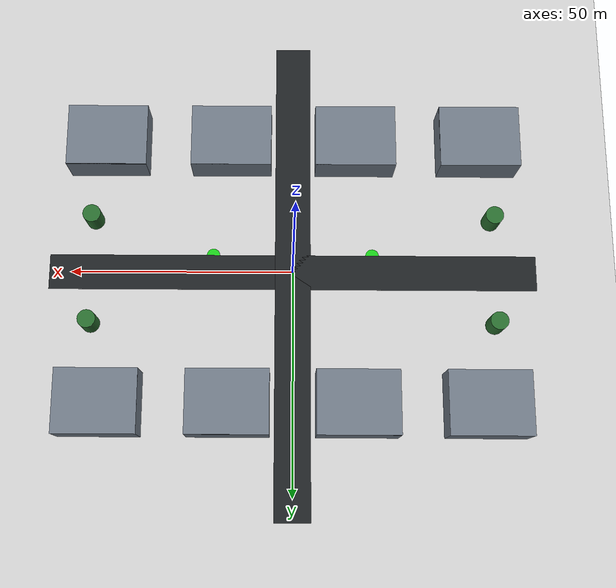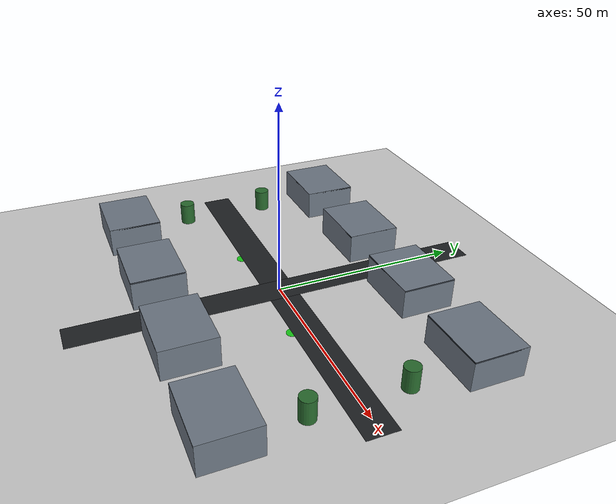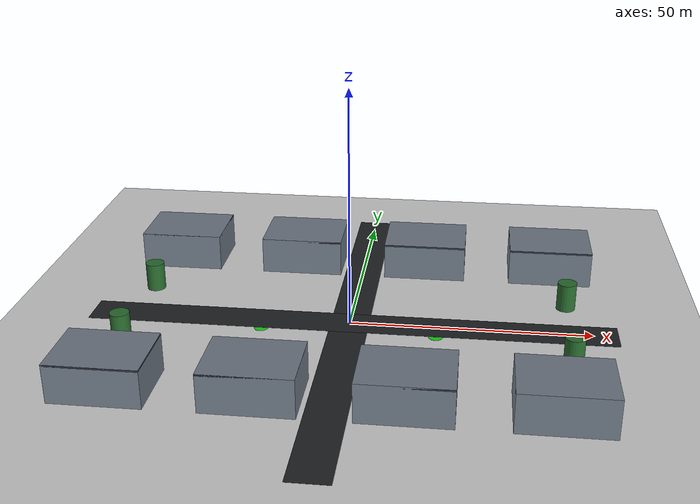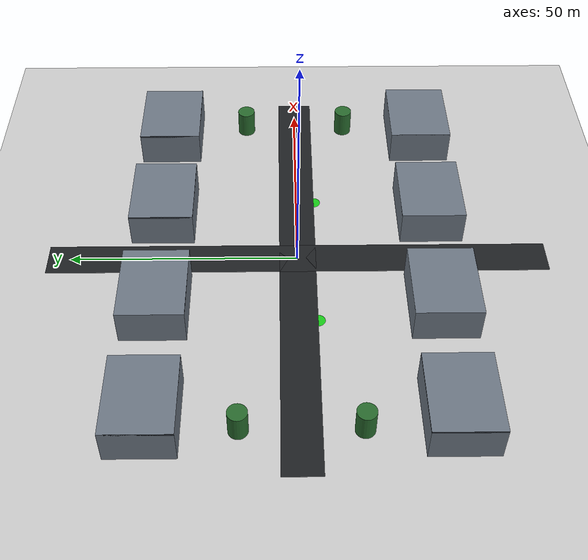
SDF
<?xml version="1.0"?>
<sdf version="1.6"><world name="outdoor_logistics_yard">
  <physics name="default_physics" type="ode"><max_step_size>0.004</max_step_size><real_time_factor>1</real_time_factor><real_time_update_rate>250</real_time_update_rate><magnetic_field>6.0e-6 2.3e-5 -4.2e-5</magnetic_field></physics>
  <gravity>0 0 -9.8066</gravity>
  <include><uri>model://sun</uri></include>
  <include><uri>model://ground_plane</uri></include>
  <spherical_coordinates><surface_model>EARTH_WGS84</surface_model><latitude_deg>47.397742</latitude_deg><longitude_deg>8.545594</longitude_deg><elevation>488</elevation><heading_deg>0</heading_deg></spherical_coordinates>
<model name="road_east_west"><static>true</static><pose>0.000 0.000 0.012 0.000 0.000 0.000</pose><link name="link"><visual name="visual"><cast_shadows>false</cast_shadows><geometry><box><size>110 8 0.02</size></box></geometry><material><ambient>0.12 0.13 0.14 1</ambient><diffuse>0.12 0.13 0.14 1</diffuse></material></visual></link></model>
<model name="road_north_south"><static>true</static><pose>0.000 0.000 0.012 0.000 0.000 1.571</pose><link name="link"><visual name="visual"><cast_shadows>false</cast_shadows><geometry><box><size>110 8 0.02</size></box></geometry><material><ambient>0.12 0.13 0.14 1</ambient><diffuse>0.12 0.13 0.14 1</diffuse></material></visual></link></model>
<model name="warehouse_00"><static>true</static><pose>-42.000 -30.000 4.000 0 0 0</pose><link name="link"><collision name="collision"><geometry><box><size>18 14 8</size></box></geometry></collision><visual name="visual"><geometry><box><size>18 14 8</size></box></geometry><material><ambient>0.43 0.47 0.52 1</ambient><diffuse>0.43 0.47 0.52 1</diffuse></material></visual></link></model>
<model name="warehouse_00_roof"><static>true</static><pose>-42.000 -30.000 7.820 0.000 0.000 0.000</pose><link name="link"><visual name="visual"><cast_shadows>false</cast_shadows><geometry><box><size>18 14 .36</size></box></geometry><material><ambient>0.20 0.23 0.27 1</ambient><diffuse>0.20 0.23 0.27 1</diffuse></material></visual></link></model>
<model name="warehouse_01"><static>true</static><pose>-14.000 -30.000 4.000 0 0 0</pose><link name="link"><collision name="collision"><geometry><box><size>18 14 8</size></box></geometry></collision><visual name="visual"><geometry><box><size>18 14 8</size></box></geometry><material><ambient>0.43 0.47 0.52 1</ambient><diffuse>0.43 0.47 0.52 1</diffuse></material></visual></link></model>
<model name="warehouse_01_roof"><static>true</static><pose>-14.000 -30.000 7.820 0.000 0.000 0.000</pose><link name="link"><visual name="visual"><cast_shadows>false</cast_shadows><geometry><box><size>18 14 .36</size></box></geometry><material><ambient>0.20 0.23 0.27 1</ambient><diffuse>0.20 0.23 0.27 1</diffuse></material></visual></link></model>
<model name="warehouse_02"><static>true</static><pose>14.000 -30.000 4.000 0 0 0</pose><link name="link"><collision name="collision"><geometry><box><size>18 14 8</size></box></geometry></collision><visual name="visual"><geometry><box><size>18 14 8</size></box></geometry><material><ambient>0.43 0.47 0.52 1</ambient><diffuse>0.43 0.47 0.52 1</diffuse></material></visual></link></model>
<model name="warehouse_02_roof"><static>true</static><pose>14.000 -30.000 7.820 0.000 0.000 0.000</pose><link name="link"><visual name="visual"><cast_shadows>false</cast_shadows><geometry><box><size>18 14 .36</size></box></geometry><material><ambient>0.20 0.23 0.27 1</ambient><diffuse>0.20 0.23 0.27 1</diffuse></material></visual></link></model>
<model name="warehouse_03"><static>true</static><pose>42.000 -30.000 4.000 0 0 0</pose><link name="link"><collision name="collision"><geometry><box><size>18 14 8</size></box></geometry></collision><visual name="visual"><geometry><box><size>18 14 8</size></box></geometry><material><ambient>0.43 0.47 0.52 1</ambient><diffuse>0.43 0.47 0.52 1</diffuse></material></visual></link></model>
<model name="warehouse_03_roof"><static>true</static><pose>42.000 -30.000 7.820 0.000 0.000 0.000</pose><link name="link"><visual name="visual"><cast_shadows>false</cast_shadows><geometry><box><size>18 14 .36</size></box></geometry><material><ambient>0.20 0.23 0.27 1</ambient><diffuse>0.20 0.23 0.27 1</diffuse></material></visual></link></model>
<model name="warehouse_04"><static>true</static><pose>-42.000 30.000 4.000 0 0 0</pose><link name="link"><collision name="collision"><geometry><box><size>18 14 8</size></box></geometry></collision><visual name="visual"><geometry><box><size>18 14 8</size></box></geometry><material><ambient>0.43 0.47 0.52 1</ambient><diffuse>0.43 0.47 0.52 1</diffuse></material></visual></link></model>
<model name="warehouse_04_roof"><static>true</static><pose>-42.000 30.000 7.820 0.000 0.000 0.000</pose><link name="link"><visual name="visual"><cast_shadows>false</cast_shadows><geometry><box><size>18 14 .36</size></box></geometry><material><ambient>0.20 0.23 0.27 1</ambient><diffuse>0.20 0.23 0.27 1</diffuse></material></visual></link></model>
<model name="warehouse_05"><static>true</static><pose>-14.000 30.000 4.000 0 0 0</pose><link name="link"><collision name="collision"><geometry><box><size>18 14 8</size></box></geometry></collision><visual name="visual"><geometry><box><size>18 14 8</size></box></geometry><material><ambient>0.43 0.47 0.52 1</ambient><diffuse>0.43 0.47 0.52 1</diffuse></material></visual></link></model>
<model name="warehouse_05_roof"><static>true</static><pose>-14.000 30.000 7.820 0.000 0.000 0.000</pose><link name="link"><visual name="visual"><cast_shadows>false</cast_shadows><geometry><box><size>18 14 .36</size></box></geometry><material><ambient>0.20 0.23 0.27 1</ambient><diffuse>0.20 0.23 0.27 1</diffuse></material></visual></link></model>
<model name="warehouse_06"><static>true</static><pose>14.000 30.000 4.000 0 0 0</pose><link name="link"><collision name="collision"><geometry><box><size>18 14 8</size></box></geometry></collision><visual name="visual"><geometry><box><size>18 14 8</size></box></geometry><material><ambient>0.43 0.47 0.52 1</ambient><diffuse>0.43 0.47 0.52 1</diffuse></material></visual></link></model>
<model name="warehouse_06_roof"><static>true</static><pose>14.000 30.000 7.820 0.000 0.000 0.000</pose><link name="link"><visual name="visual"><cast_shadows>false</cast_shadows><geometry><box><size>18 14 .36</size></box></geometry><material><ambient>0.20 0.23 0.27 1</ambient><diffuse>0.20 0.23 0.27 1</diffuse></material></visual></link></model>
<model name="warehouse_07"><static>true</static><pose>42.000 30.000 4.000 0 0 0</pose><link name="link"><collision name="collision"><geometry><box><size>18 14 8</size></box></geometry></collision><visual name="visual"><geometry><box><size>18 14 8</size></box></geometry><material><ambient>0.43 0.47 0.52 1</ambient><diffuse>0.43 0.47 0.52 1</diffuse></material></visual></link></model>
<model name="warehouse_07_roof"><static>true</static><pose>42.000 30.000 7.820 0.000 0.000 0.000</pose><link name="link"><visual name="visual"><cast_shadows>false</cast_shadows><geometry><box><size>18 14 .36</size></box></geometry><material><ambient>0.20 0.23 0.27 1</ambient><diffuse>0.20 0.23 0.27 1</diffuse></material></visual></link></model>
<model name="tree_obstacle_00"><static>true</static><pose>-45.000 -12.000 3.000 0 0 0</pose><link name="link"><collision name="collision"><geometry><cylinder><radius>2</radius><length>6</length></cylinder></geometry></collision><visual name="visual"><geometry><cylinder><radius>2</radius><length>6</length></cylinder></geometry><material><ambient>0.16 0.42 0.18 1</ambient><diffuse>0.16 0.42 0.18 1</diffuse></material></visual></link></model>
<model name="tree_obstacle_01"><static>true</static><pose>-45.000 12.000 3.000 0 0 0</pose><link name="link"><collision name="collision"><geometry><cylinder><radius>2</radius><length>6</length></cylinder></geometry></collision><visual name="visual"><geometry><cylinder><radius>2</radius><length>6</length></cylinder></geometry><material><ambient>0.16 0.42 0.18 1</ambient><diffuse>0.16 0.42 0.18 1</diffuse></material></visual></link></model>
<model name="tree_obstacle_02"><static>true</static><pose>45.000 -12.000 3.000 0 0 0</pose><link name="link"><collision name="collision"><geometry><cylinder><radius>2</radius><length>6</length></cylinder></geometry></collision><visual name="visual"><geometry><cylinder><radius>2</radius><length>6</length></cylinder></geometry><material><ambient>0.16 0.42 0.18 1</ambient><diffuse>0.16 0.42 0.18 1</diffuse></material></visual></link></model>
<model name="tree_obstacle_03"><static>true</static><pose>45.000 12.000 3.000 0 0 0</pose><link name="link"><collision name="collision"><geometry><cylinder><radius>2</radius><length>6</length></cylinder></geometry></collision><visual name="visual"><geometry><cylinder><radius>2</radius><length>6</length></cylinder></geometry><material><ambient>0.16 0.42 0.18 1</ambient><diffuse>0.16 0.42 0.18 1</diffuse></material></visual></link></model>
<model name="uav_pad_00"><static>true</static><pose>-18.000 -4.000 -0.009 0.000 0.000 0.000</pose><link name="link"><visual name="visual"><cast_shadows>false</cast_shadows><geometry><cylinder><radius>1.5</radius><length>0.02</length></cylinder></geometry><material><ambient>0.1 0.8 0.1 1</ambient><diffuse>0.1 0.8 0.1 1</diffuse></material></visual></link></model>
<model name="uav_pad_01"><static>true</static><pose>0.000 -4.000 -0.009 0.000 0.000 0.000</pose><link name="link"><visual name="visual"><cast_shadows>false</cast_shadows><geometry><cylinder><radius>1.5</radius><length>0.02</length></cylinder></geometry><material><ambient>0.1 0.8 0.1 1</ambient><diffuse>0.1 0.8 0.1 1</diffuse></material></visual></link></model>
<model name="uav_pad_02"><static>true</static><pose>18.000 -4.000 -0.009 0.000 0.000 0.000</pose><link name="link"><visual name="visual"><cast_shadows>false</cast_shadows><geometry><cylinder><radius>1.5</radius><length>0.02</length></cylinder></geometry><material><ambient>0.1 0.8 0.1 1</ambient><diffuse>0.1 0.8 0.1 1</diffuse></material></visual></link></model>
<model name="start_zone"><static>true</static><pose>-18.000 -4.000 -0.009 0.000 0.000 0.000</pose><link name="link"><visual name="visual"><cast_shadows>false</cast_shadows><geometry><cylinder><radius>1.5</radius><length>0.02</length></cylinder></geometry><material><ambient>0.1 0.8 0.1 1</ambient><diffuse>0.1 0.8 0.1 1</diffuse></material></visual></link></model>
<model name="goal_zone"><static>true</static><pose>0.000 42.000 -0.009 0.000 0.000 0.000</pose><link name="link"><visual name="visual"><cast_shadows>false</cast_shadows><geometry><cylinder><radius>1.5</radius><length>0.02</length></cylinder></geometry><material><ambient>0.9 0.15 0.1 1</ambient><diffuse>0.9 0.15 0.1 1</diffuse></material></visual></link></model>
</world></sdf>
